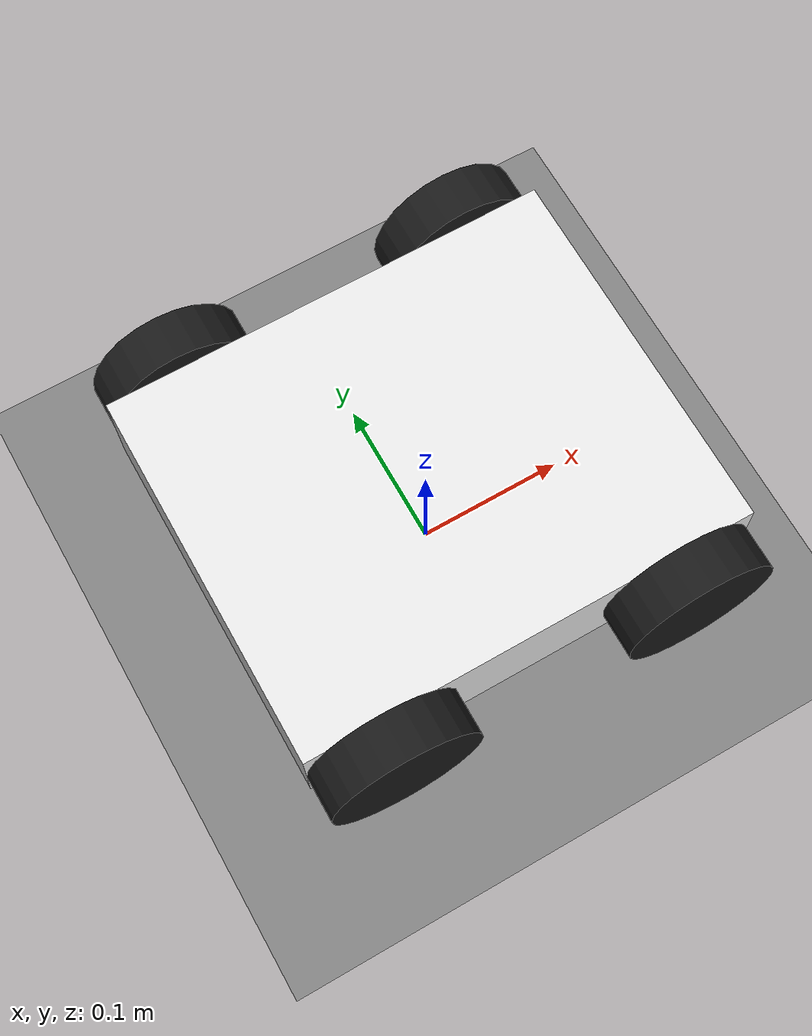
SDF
<?xml version="1.0" ?>
<sdf version="1.8">
  <world name="mecanum_world">

    <!-- Physique -->
    <physics name="1ms" type="ignored">
      <max_step_size>0.001</max_step_size>
      <real_time_factor>1.0</real_time_factor>
    </physics>

    <!-- Plugins monde -->
    <plugin filename="gz-sim-physics-system"
            name="gz::sim::systems::Physics"/>
    <plugin filename="gz-sim-scene-broadcaster-system"
            name="gz::sim::systems::SceneBroadcaster"/>
    <plugin filename="gz-sim-user-commands-system"
            name="gz::sim::systems::UserCommands"/>

    <!-- Lumière -->
    <light name="sun" type="directional">
      <pose>0 0 10 0 0 0</pose>
      <diffuse>1 1 1 1</diffuse>
      <specular>0.5 0.5 0.5 1</specular>
      <cast_shadows>true</cast_shadows>
      <direction>-0.5 0.1 -0.9</direction>
    </light>

    <!-- Sol -->
    <model name="ground_plane">
      <static>true</static>
      <link name="link">
        <collision name="col">
          <geometry><plane><normal>0 0 1</normal></plane></geometry>
        </collision>
        <visual name="vis">
          <geometry>
            <plane><normal>0 0 1</normal><size>20 20</size></plane>
          </geometry>
          <material><ambient>0.5 0.5 0.5 1</ambient></material>
        </visual>
      </link>
    </model>

    <!-- Robot Mecanum intégré directement -->
    <model name="mecanum_robot">
      <pose>0 0 0.1 0 0 0</pose>

      <!-- Chassis -->
      <link name="base_link">
        <inertial>
          <mass>2.0</mass>
          <inertia>
            <ixx>0.02</ixx><iyy>0.02</iyy><izz>0.04</izz>
          </inertia>
        </inertial>
        <visual name="base_visual">
          <geometry>
            <box><size>0.30 0.25 0.07</size></box>
          </geometry>
          <material>
            <ambient>0.9 0.9 0.9 1</ambient>
            <diffuse>0.9 0.9 0.9 1</diffuse>
          </material>
        </visual>
        <collision name="base_collision">
          <geometry>
            <box><size>0.30 0.25 0.07</size></box>
          </geometry>
        </collision>
      </link>

      <!-- Roue Avant Gauche -->
      <link name="wheel_fl">
        <pose>0.10 0.14 0 1.5707 0 0</pose>
        <inertial><mass>0.1</mass>
          <inertia><ixx>0.001</ixx><iyy>0.001</iyy><izz>0.001</izz></inertia>
        </inertial>
        <visual name="vis">
          <geometry><cylinder><radius>0.05</radius><length>0.03</length></cylinder></geometry>
          <material><ambient>0.1 0.1 0.1 1</ambient><diffuse>0.1 0.1 0.1 1</diffuse></material>
        </visual>
        <collision name="col">
          <geometry><cylinder><radius>0.05</radius><length>0.03</length></cylinder></geometry>
        </collision>
      </link>
      <joint name="joint_fl" type="revolute">
        <parent>base_link</parent><child>wheel_fl</child>
        <axis><xyz>0 0 1</xyz></axis>
      </joint>

      <!-- Roue Avant Droite -->
      <link name="wheel_fr">
        <pose>0.10 -0.14 0 1.5707 0 0</pose>
        <inertial><mass>0.1</mass>
          <inertia><ixx>0.001</ixx><iyy>0.001</iyy><izz>0.001</izz></inertia>
        </inertial>
        <visual name="vis">
          <geometry><cylinder><radius>0.05</radius><length>0.03</length></cylinder></geometry>
          <material><ambient>0.1 0.1 0.1 1</ambient><diffuse>0.1 0.1 0.1 1</diffuse></material>
        </visual>
        <collision name="col">
          <geometry><cylinder><radius>0.05</radius><length>0.03</length></cylinder></geometry>
        </collision>
      </link>
      <joint name="joint_fr" type="revolute">
        <parent>base_link</parent><child>wheel_fr</child>
        <axis><xyz>0 0 1</xyz></axis>
      </joint>

      <!-- Roue Arrière Gauche -->
      <link name="wheel_rl">
        <pose>-0.10 0.14 0 1.5707 0 0</pose>
        <inertial><mass>0.1</mass>
          <inertia><ixx>0.001</ixx><iyy>0.001</iyy><izz>0.001</izz></inertia>
        </inertial>
        <visual name="vis">
          <geometry><cylinder><radius>0.05</radius><length>0.03</length></cylinder></geometry>
          <material><ambient>0.1 0.1 0.1 1</ambient><diffuse>0.1 0.1 0.1 1</diffuse></material>
        </visual>
        <collision name="col">
          <geometry><cylinder><radius>0.05</radius><length>0.03</length></cylinder></geometry>
        </collision>
      </link>
      <joint name="joint_rl" type="revolute">
        <parent>base_link</parent><child>wheel_rl</child>
        <axis><xyz>0 0 1</xyz></axis>
      </joint>

      <!-- Roue Arrière Droite -->
      <link name="wheel_rr">
        <pose>-0.10 -0.14 0 1.5707 0 0</pose>
        <inertial><mass>0.1</mass>
          <inertia><ixx>0.001</ixx><iyy>0.001</iyy><izz>0.001</izz></inertia>
        </inertial>
        <visual name="vis">
          <geometry><cylinder><radius>0.05</radius><length>0.03</length></cylinder></geometry>
          <material><ambient>0.1 0.1 0.1 1</ambient><diffuse>0.1 0.1 0.1 1</diffuse></material>
        </visual>
        <collision name="col">
          <geometry><cylinder><radius>0.05</radius><length>0.03</length></cylinder></geometry>
        </collision>
      </link>
      <joint name="joint_rr" type="revolute">
        <parent>base_link</parent><child>wheel_rr</child>
        <axis><xyz>0 0 1</xyz></axis>
      </joint>

      <!-- Plugin Mecanum Drive -->
      <plugin filename="gz-sim-mecanum-drive-system"
              name="gz::sim::systems::MecanumDrive">
        <front_left_joint>joint_fl</front_left_joint>
        <front_right_joint>joint_fr</front_right_joint>
        <back_left_joint>joint_rl</back_left_joint>
        <back_right_joint>joint_rr</back_right_joint>
        <wheel_separation>0.28</wheel_separation>
        <wheelbase>0.20</wheelbase>
        <wheel_radius>0.05</wheel_radius>
        <topic>cmd_vel</topic>
        <odom_topic>odom</odom_topic>
      </plugin>

    </model>

  </world>
</sdf>
